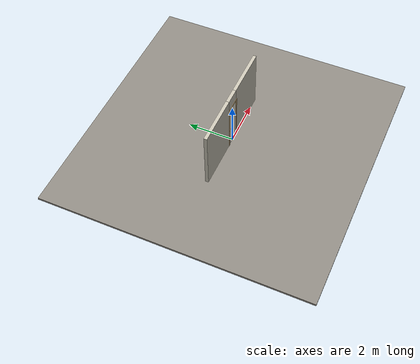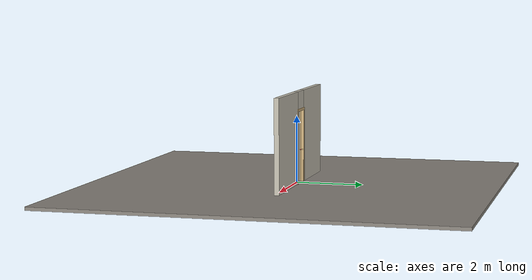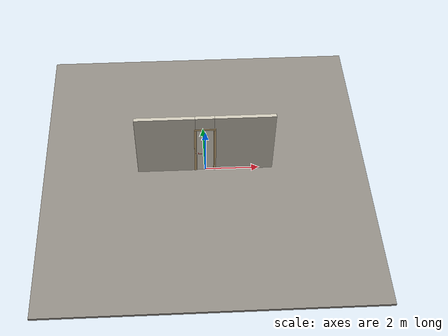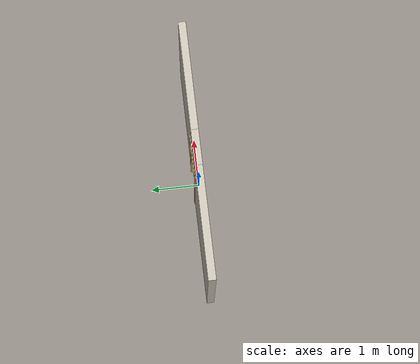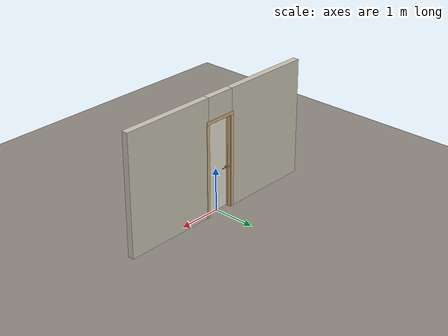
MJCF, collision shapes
<?xml version="1.0" ?>
<mujoco model="db0223_swing_single_full">
  <compiler angle="radian" meshdir="../../hardware" texturedir="../../textures" autolimits="true" inertiafromgeom="false"/>
  <option timestep="0.002" integrator="implicitfast" cone="elliptic" impratio="10" noslip_iterations="3">
    <flag multiccd="enable"/>
  </option>
  <size memory="16M"/>
  <default>
    <geom condim="4" solref="0.005 1" solimp="0.95 0.99 0.001"/>
    <joint solreflimit="0.005 1" solimplimit="0.95 0.99 0.001"/>
    <tendon solreflimit="0.005 1"/>
    <equality solref="0.002 1"/>
  </default>
  <visual>
    <headlight ambient="0.4 0.4 0.4" diffuse="0.7 0.7 0.7" specular="0.2 0.2 0.2"/>
    <quality shadowsize="4096"/>
    <map znear="0.01" zfar="60"/>
  </visual>
  <asset>
    <mesh name="hinge_96510cf394" file="hinge_96510cf394.obj"/>
    <mesh name="hinge_jamb_7fd4ca52b2" file="hinge_jamb_7fd4ca52b2.obj"/>
    <mesh name="lever_9f02b544cf" file="lever_9f02b544cf.obj"/>
    <material name="mat_floor" rgba="0.55 0.53 0.5 1" specular="0.2" shininess="0.15" reflectance="0"/>
    <material name="mat_wall" rgba="0.78 0.76 0.7 1" specular="0.2" shininess="0.1" reflectance="0"/>
    <material name="mat_leaf" rgba="0.9 0.88 0.82 1" specular="0.2" shininess="0.52" reflectance="0"/>
    <material name="mat_hinge" rgba="0.65 0.66 0.68 1" specular="0.74" shininess="0.5" reflectance="0.36"/>
    <material name="mat_op_nickel_satin" rgba="0.72 0.7 0.66 1" specular="0.8" shininess="0.65" reflectance="0.4"/>
    <material name="mat_trim" rgba="0.85 0.66 0.3 1" specular="0.8" shininess="0.75" reflectance="0.4"/>
    <material name="mat_bolt" rgba="0.85 0.66 0.3 1" specular="0.8" shininess="0.75" reflectance="0.4"/>
    <material name="mat_frame" rgba="0.82 0.7 0.5 1" specular="0.2" shininess="0.45" reflectance="0"/>
    <texture name="skybox" type="skybox" builtin="gradient" rgb1="0.6 0.7 0.85" rgb2="0.9 0.92 0.95" width="256" height="256"/>
  </asset>
  <worldbody>
    <light name="sun" pos="1.5 -2.5 4" dir="-0.3 0.5 -0.8" directional="true" diffuse="0.8 0.8 0.8" specular="0.3 0.3 0.3" castshadow="true"/>
    <light name="fill" pos="-1.5 2.5 3" dir="0.3 -0.5 -0.7" directional="true" diffuse="0.35 0.35 0.4" castshadow="false"/>
    <camera name="robot_view" pos="0 -2.589812 1.812087" xyaxes="1 0 0 0 0.26963 0.962964" fovy="52"/>
    <camera name="far_view" pos="0 2.685812 1.812087" xyaxes="-1 0 0 0 -0.26963 0.962964" fovy="52"/>
    <camera name="iso" pos="-2.004737 -2.167762 2.234138" xyaxes="0.741536 -0.670913 0 0.242917 0.268487 0.932151" fovy="46"/>
    <camera name="detail_handle" pos="0.0355 -0.8725 1.245" xyaxes="0.97561 0.219512 0 -0.070934 0.315262 0.94635" fovy="38"/>
    <geom name="floor" type="box" size="6 6 0.05" pos="0 0 -0.05" material="mat_floor" group="0" contype="1" conaffinity="1" friction="0.8 0.005 0.0001" density="2400"/>
    <geom name="wall_left" type="box" size="1.07125 0.0725 1.3735" pos="-1.42875 0.048 1.3735" material="mat_wall" group="0" contype="1" conaffinity="1" friction="0.6 0.005 0.0001" density="800"/>
    <geom name="wall_right" type="box" size="1.08625 0.0725 1.3735" pos="1.41375 0.048 1.3735" material="mat_wall" group="0" contype="1" conaffinity="1" friction="0.6 0.005 0.0001" density="800"/>
    <geom name="wall_header" type="box" size="0.3425 0.0725 0.2755" pos="-0.015 0.048 2.4715" material="mat_wall" group="0" contype="1" conaffinity="1" friction="0.6 0.005 0.0001" density="800"/>
    <geom name="hinge_0_jamb" type="mesh" mesh="hinge_jamb_7fd4ca52b2" pos="0.3055 -0.0245 0.259" quat="0 0 1 0" material="mat_hinge" group="1" contype="0" conaffinity="0" density="7850"/>
    <geom name="hinge_1_jamb" type="mesh" mesh="hinge_jamb_7fd4ca52b2" pos="0.3055 -0.0245 1.076" quat="0 0 1 0" material="mat_hinge" group="1" contype="0" conaffinity="0" density="7850"/>
    <geom name="hinge_2_jamb" type="mesh" mesh="hinge_jamb_7fd4ca52b2" pos="0.3055 -0.0245 1.963" quat="0 0 1 0" material="mat_hinge" group="1" contype="0" conaffinity="0" density="7850"/>
    <geom name="jamb_hinge" type="box" size="0.0095 0.0725 1.0735" pos="0.318 0.048 1.0735" material="mat_frame" group="0" contype="1" conaffinity="1" friction="0.6 0.005 0.0001" density="400"/>
    <geom name="strike_965_wall_n" type="box" size="0.0245 0.056325 0.0167" pos="-0.333 0.064175 0.965" material="mat_frame" group="0" contype="1" conaffinity="1" friction="0.6 0.005 0.0001" density="400"/>
    <geom name="strike_965_wall_p" type="box" size="0.0245 0.008 0.0167" pos="-0.333 -0.01585 0.965" material="mat_frame" group="0" contype="1" conaffinity="1" friction="0.6 0.005 0.0001" density="400"/>
    <geom name="strike_965_ramp" type="box" size="0.0245 0.01649 0.0167" pos="-0.337636 -0.028673 0.965" quat="0.977148 0 0 -0.212558" material="mat_frame" group="0" contype="1" conaffinity="1" friction="0.12 0.005 0.0001" density="400"/>
    <geom name="strike_965_back" type="box" size="0.01615 0.00785 0.0167" pos="-0.34135 0 0.965" material="mat_frame" group="0" contype="1" conaffinity="1" friction="0.6 0.005 0.0001" density="400"/>
    <geom name="jamb_strike_0" type="box" size="0.0245 0.0725 0.47415" pos="-0.333 0.048 0.47415" material="mat_frame" group="0" contype="1" conaffinity="1" friction="0.6 0.005 0.0001" density="400"/>
    <geom name="jamb_strike_1" type="box" size="0.0245 0.0725 0.58265" pos="-0.333 0.048 1.56435" material="mat_frame" group="0" contype="1" conaffinity="1" friction="0.6 0.005 0.0001" density="400"/>
    <geom name="jamb_head" type="box" size="0.3425 0.0725 0.0095" pos="-0.015 0.048 2.1565" material="mat_frame" group="0" contype="1" conaffinity="1" friction="0.6 0.005 0.0001" density="400"/>
    <geom name="head_stud" type="box" size="0.3425 0.0725 0.015" pos="-0.015 0.048 2.181" material="mat_wall" group="0" contype="1" conaffinity="1" friction="0.6 0.005 0.0001" density="500"/>
    <geom name="stop_hinge" type="box" size="0.0055 0.016 1.0735" pos="0.303 0.034 1.0735" material="mat_frame" group="0" contype="1" conaffinity="1" friction="0.6 0.005 0.0001" density="400"/>
    <geom name="stop_strike" type="box" size="0.0055 0.016 1.0735" pos="-0.303 0.034 1.0735" material="mat_frame" group="0" contype="1" conaffinity="1" friction="0.6 0.005 0.0001" density="400"/>
    <geom name="stop_head" type="box" size="0.3085 0.016 0.0055" pos="0 0.034 2.1415" material="mat_frame" group="0" contype="1" conaffinity="1" friction="0.6 0.005 0.0001" density="400"/>
    <geom name="casing_l_n" type="box" size="0.035 0.008 1.083" pos="-0.3575 -0.0325 1.0735" material="mat_frame" group="2" contype="0" conaffinity="0" density="400"/>
    <geom name="casing_r_n" type="box" size="0.035 0.008 1.083" pos="0.3575 -0.0325 1.0735" material="mat_frame" group="2" contype="0" conaffinity="0" density="400"/>
    <geom name="casing_h_n" type="box" size="0.3925 0.008 0.035" pos="0 -0.0325 2.196" material="mat_frame" group="2" contype="0" conaffinity="0" density="400"/>
    <geom name="casing_l_p" type="box" size="0.035 0.008 1.083" pos="-0.3575 0.1285 1.0735" material="mat_frame" group="2" contype="0" conaffinity="0" density="400"/>
    <geom name="casing_r_p" type="box" size="0.035 0.008 1.083" pos="0.3575 0.1285 1.0735" material="mat_frame" group="2" contype="0" conaffinity="0" density="400"/>
    <geom name="casing_h_p" type="box" size="0.3925 0.008 0.035" pos="0 0.1285 2.196" material="mat_frame" group="2" contype="0" conaffinity="0" density="400"/>
    <site name="approach_point" pos="0 -1.5 0" quat="1 0 0 0" size="0.05" rgba="0.2 0.9 0.2 0.5" group="4"/>
    <site name="goal_point" pos="0 1.5 0" quat="1 0 0 0" size="0.05" rgba="0.2 0.9 0.2 0.5" group="4"/>
    <site name="door_plane_center" pos="0 0 1.0735" quat="1 0 0 0" size="0.02" rgba="0.2 0.9 0.2 0.5" group="4"/>
    <body name="leaf" pos="0.3085 0 0">
      <inertial pos="-0.297221 -0.000535 1.076718" mass="11.609903" quat="0.500984 -0.498594 0.501388 0.499028" diaginertia="0.387226993 4.446921375 4.83156851"/>
      <joint name="leaf_hinge" type="hinge" axis="0 0 1" pos="-0.003 -0.0245 0" limited="true" range="0 2.356194" damping="0.103362" frictionloss="0.077447" armature="0.02"/>
      <geom name="leaf_slab" type="box" size="0.305 0.0175 1.067" pos="-0.308 0 1.076" material="mat_leaf" group="0" contype="1" conaffinity="1" friction="0.35 0.005 0.0001" density="1"/>
      <geom name="hinge_0" type="mesh" mesh="hinge_96510cf394" pos="-0.003 -0.0245 0.259" quat="0 0 1 0" material="mat_hinge" group="1" contype="0" conaffinity="0" density="7850"/>
      <geom name="hinge_1" type="mesh" mesh="hinge_96510cf394" pos="-0.003 -0.0245 1.076" quat="0 0 1 0" material="mat_hinge" group="1" contype="0" conaffinity="0" density="7850"/>
      <geom name="hinge_2" type="mesh" mesh="hinge_96510cf394" pos="-0.003 -0.0245 1.963" quat="0 0 1 0" material="mat_hinge" group="1" contype="0" conaffinity="0" density="7850"/>
      <geom name="leaf_latch_bolt_faceplate" type="box" size="0.0006 0.01235 0.0267" pos="-0.6124 0 0.965" material="mat_bolt" group="1" contype="0" conaffinity="0" density="8500"/>
      <site name="leaf_edge_mid" pos="-0.613 0 1.067" quat="1 0 0 0" size="0.02" rgba="0.2 0.9 0.2 0.5" group="4"/>
      <body name="leaf_handle" pos="-0.553 0 0.965">
        <inertial pos="0.028779 0 0" mass="0.970196" quat="0.707107 0 0 -0.707107" diaginertia="0.001765339 0.003138972 0.004726252"/>
        <joint name="leaf_handle_hinge" type="hinge" axis="0 1 0" limited="true" range="0 0.96" damping="0.245623" frictionloss="0.048" stiffness="1.2" springref="-0.458333" armature="0.01"/>
        <geom name="leaf_handle_spindle" type="cylinder" size="0.006 0.0255" pos="0 0 0" quat="0.707107 -0.707107 0 0" material="mat_op_nickel_satin" group="1" contype="0" conaffinity="0" density="7850"/>
        <geom name="leaf_handle_lever_n" type="mesh" mesh="lever_9f02b544cf" pos="0 -0.0175 0" quat="0 0 -0.707107 0.707107" material="mat_op_nickel_satin" group="1" contype="0" conaffinity="0" density="3000"/>
        <geom name="leaf_handle_lever_col_n" type="capsule" size="0.0095 0.053" pos="0.0625 -0.0725 0" quat="0.707107 0 0.707107 0" material="mat_op_nickel_satin" group="3" contype="1" conaffinity="1" rgba="0.8 0.3 0.3 0.25" friction="0.7 0.01 0.0001" density="3000"/>
        <geom name="leaf_handle_hub_col_n" type="cylinder" size="0.012 0.022" pos="0 -0.0475 0" quat="0.707107 -0.707107 0 0" material="mat_op_nickel_satin" group="3" contype="1" conaffinity="1" rgba="0.8 0.3 0.3 0.25" friction="0.6 0.005 0.0001" density="3000"/>
        <geom name="leaf_handle_lever_p" type="mesh" mesh="lever_9f02b544cf" pos="0 0.0175 0" quat="0 0 0.707107 0.707107" material="mat_op_nickel_satin" group="1" contype="0" conaffinity="0" density="3000"/>
        <geom name="leaf_handle_lever_col_p" type="capsule" size="0.0095 0.053" pos="0.0625 0.0725 0" quat="0.707107 0 0.707107 0" material="mat_op_nickel_satin" group="3" contype="1" conaffinity="1" rgba="0.8 0.3 0.3 0.25" friction="0.7 0.01 0.0001" density="3000"/>
        <geom name="leaf_handle_hub_col_p" type="cylinder" size="0.012 0.022" pos="0 0.0475 0" quat="0.707107 -0.707107 0 0" material="mat_op_nickel_satin" group="3" contype="1" conaffinity="1" rgba="0.8 0.3 0.3 0.25" friction="0.6 0.005 0.0001" density="3000"/>
        <site name="leaf_handle_grip_n" pos="0.1 -0.0725 0" quat="1 0 0 0" size="0.012" rgba="0.2 0.9 0.2 0.5" group="4"/>
        <site name="leaf_handle_grip_p" pos="0.1 0.0725 0" quat="1 0 0 0" size="0.012" rgba="0.2 0.9 0.2 0.5" group="4"/>
      </body>
      <body name="leaf_latch_bolt" pos="-0.613 0 0.965">
        <inertial pos="0.00865 0 0" mass="0.041419" quat="0.92388 0.382683 0 0" diaginertia="0.000000798 0.000005598 0.000005598"/>
        <joint name="leaf_latch_bolt_slide" type="slide" axis="1 0 0" limited="true" range="0 0.0127" damping="2" frictionloss="0.3" stiffness="300" springref="-0.008333" armature="0.1"/>
        <geom name="leaf_latch_bolt_capsule" type="capsule" size="0.00635 0.015" pos="0.00865 0 0" quat="0.707107 0 -0.707107 0" material="mat_bolt" group="0" contype="1" conaffinity="1" friction="0.2 0.005 0.0001" density="8500"/>
      </body>
    </body>
  </worldbody>
  <tendon>
    <fixed name="leaf_latch_bolt_coupling" limited="true" range="0 10">
      <joint joint="leaf_latch_bolt_slide" coef="1"/>
      <joint joint="leaf_handle_hinge" coef="-0.013956"/>
    </fixed>
  </tendon>
  <sensor>
    <jointpos name="leaf_hinge_pos" joint="leaf_hinge"/>
    <jointvel name="leaf_hinge_vel" joint="leaf_hinge"/>
    <jointpos name="leaf_handle_hinge_pos" joint="leaf_handle_hinge"/>
    <jointvel name="leaf_handle_hinge_vel" joint="leaf_handle_hinge"/>
    <jointpos name="leaf_latch_bolt_slide_pos" joint="leaf_latch_bolt_slide"/>
    <jointvel name="leaf_latch_bolt_slide_vel" joint="leaf_latch_bolt_slide"/>
  </sensor>
</mujoco>
